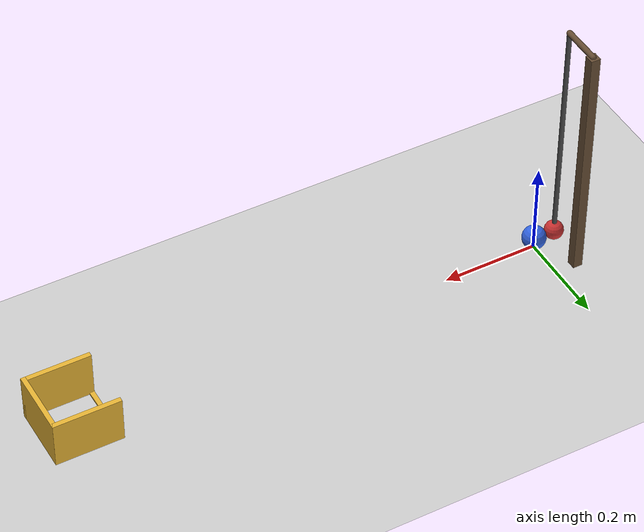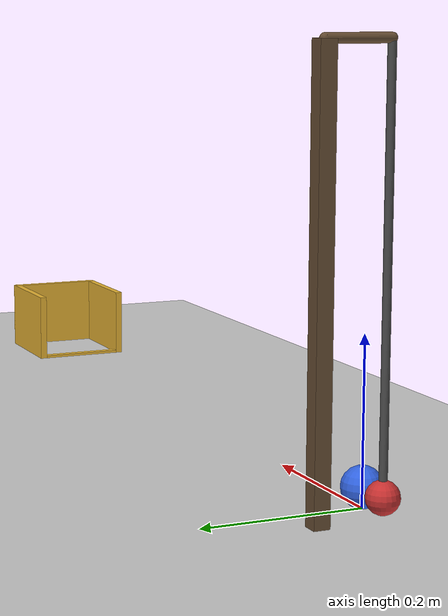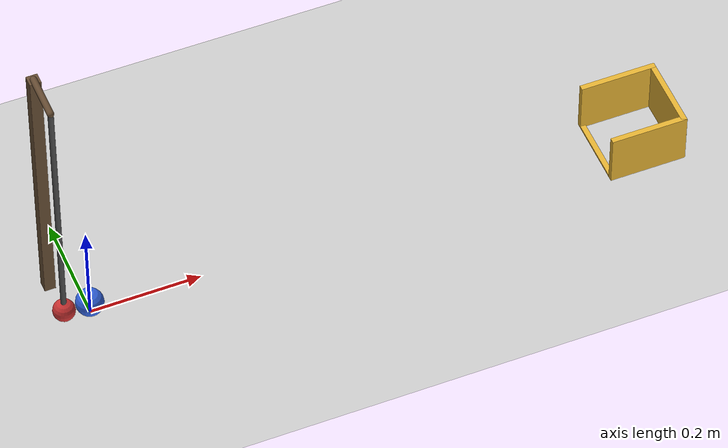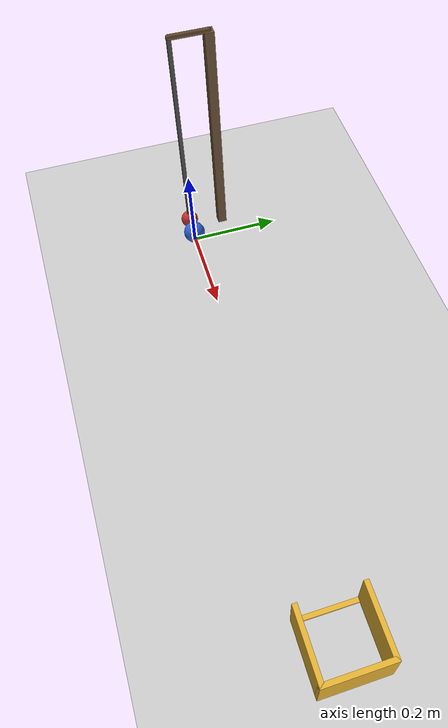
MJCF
<mujoco model="pendulum_ball_cup">
  <option timestep="0.002" gravity="0 0 -9.81"/>
  <visual>
    <global offwidth="1280" offheight="720"/>
  </visual>
  <worldbody>
    <light name="sun" pos="0.5 -1 2" dir="0 0.5 -1" directional="true"/>
    <geom name="floor" type="plane" size="3 3 0.1" friction="0.5 0.005 0.0001" rgba="0.8 0.8 0.8 1"/>
    <geom name="support_post" type="box" size="0.01 0.01 0.2625" pos="-0.046 0.08 0.2625" contype="0" conaffinity="0" rgba="0.4 0.3 0.2 1"/>
    <geom name="support_axle" type="capsule" fromto="-0.046 0.08 0.525 -0.046 0 0.525" size="0.006" contype="0" conaffinity="0" rgba="0.4 0.3 0.2 1"/>
    <body name="pendulum" pos="-0.046 0 0.525">
      <joint name="pendulum_hinge" type="hinge" axis="0 1 0" pos="0 0 0"/>
      <geom name="pendulum_rod" type="capsule" fromto="0 0 0 0 0 -0.48" size="0.005" mass="0.02" friction="0.5 0.005 0.0001" rgba="0.3 0.3 0.3 1"/>
      <geom name="pendulum_bob" type="sphere" pos="0 0 -0.5" size="0.02" mass="0.5" friction="0.5 0.005 0.0001" rgba="0.8 0.2 0.2 1"/>
    </body>
    <body name="ball" pos="0 0 0.025">
      <freejoint name="ball_free"/>
      <geom name="ball" type="sphere" size="0.025" mass="0.05" friction="0.5 0.005 0.0001" rgba="0.2 0.4 0.9 1"/>
    </body>
    <body name="cup" pos="1 0 0">
      <geom name="cup_back" type="box" size="0.005 0.07 0.05" pos="0.065 0 0.05" friction="0.5 0.005 0.0001" rgba="0.9 0.7 0.2 1"/>
      <geom name="cup_left" type="box" size="0.07 0.005 0.05" pos="0 0.065 0.05" friction="0.5 0.005 0.0001" rgba="0.9 0.7 0.2 1"/>
      <geom name="cup_right" type="box" size="0.07 0.005 0.05" pos="0 -0.065 0.05" friction="0.5 0.005 0.0001" rgba="0.9 0.7 0.2 1"/>
      <geom name="cup_lip" type="box" size="0.005 0.06 0.002" pos="-0.065 0 0.002" friction="0.5 0.005 0.0001" rgba="0.9 0.7 0.2 1"/>
    </body>
  </worldbody>
  <keyframe>
    <key name="start" qpos="0.45 0 0 0.025 1 0 0 0" qvel="0 0 0 0 0 0 0"/>
  </keyframe>
</mujoco>
